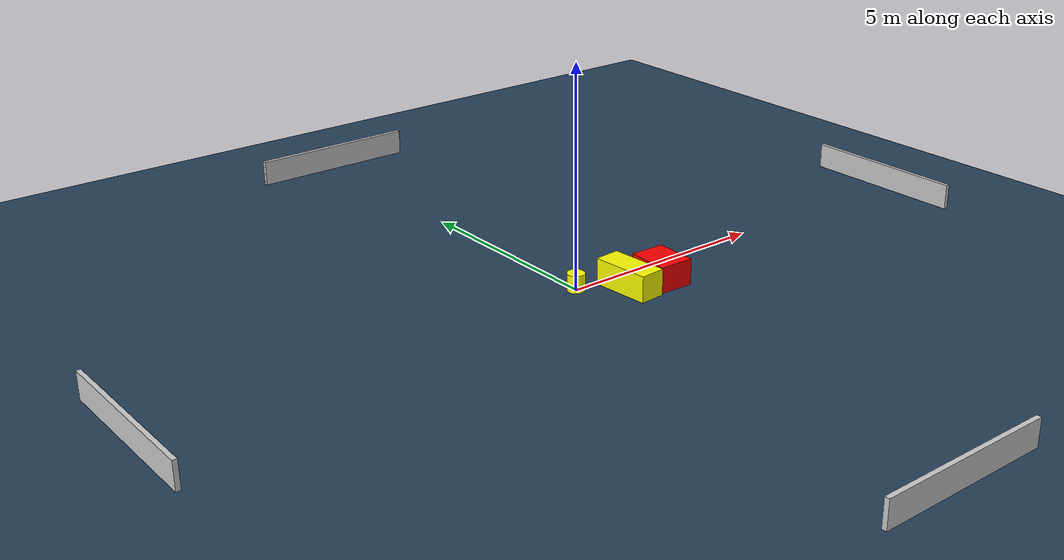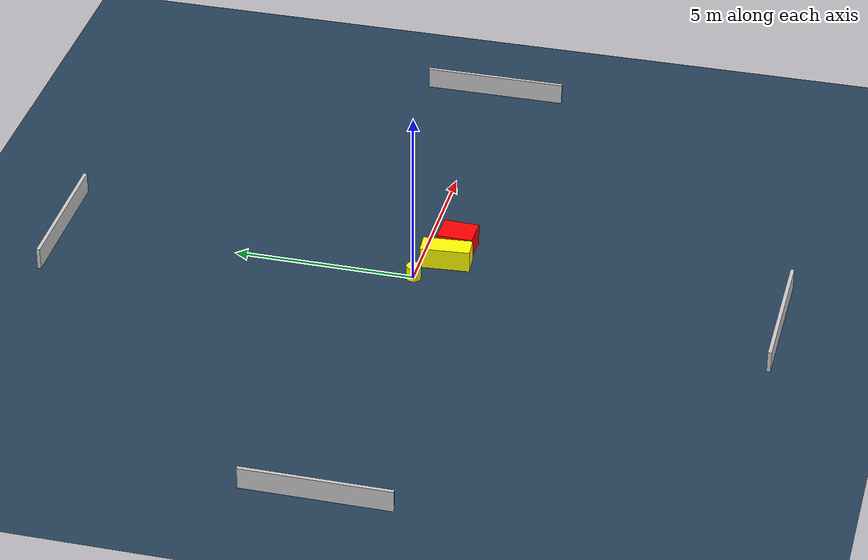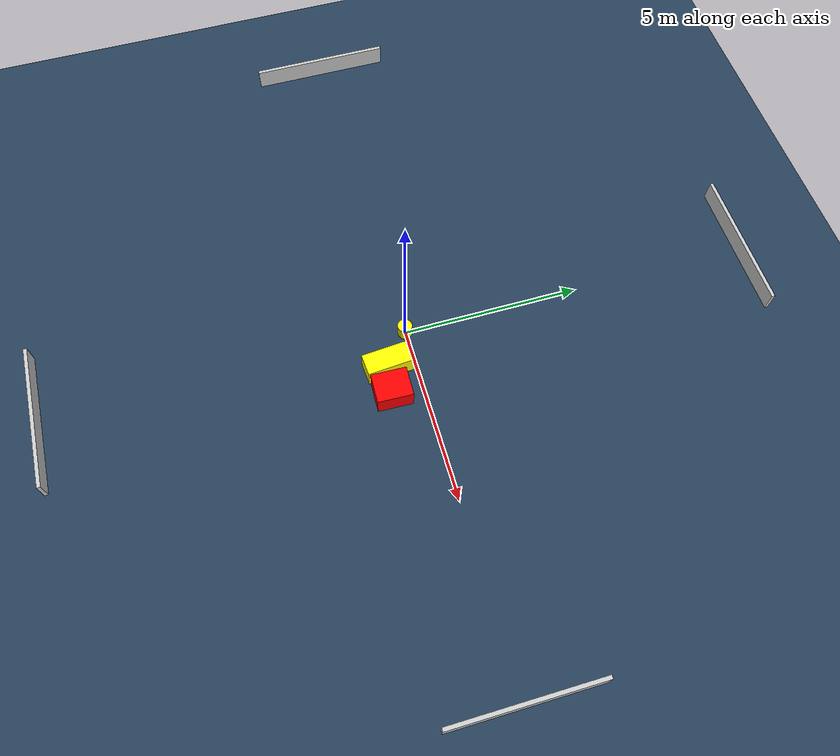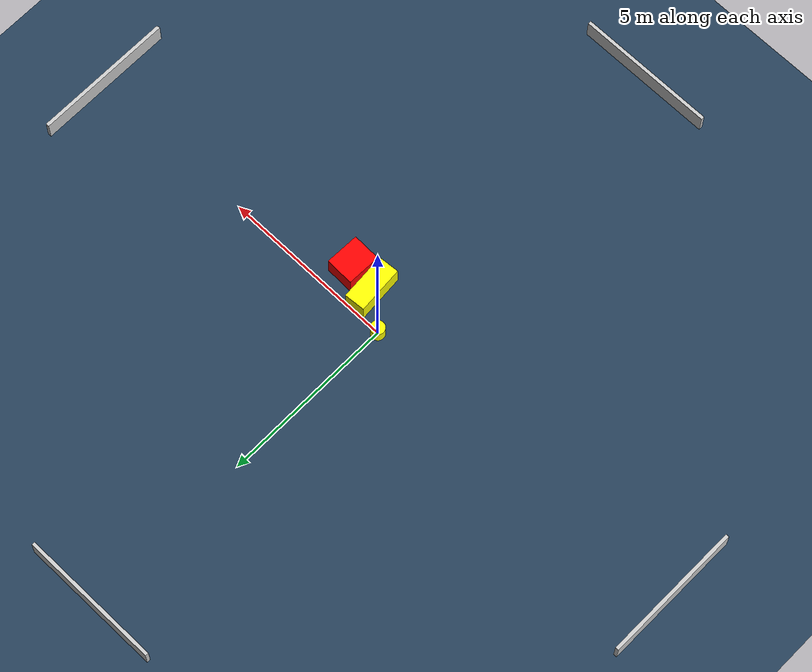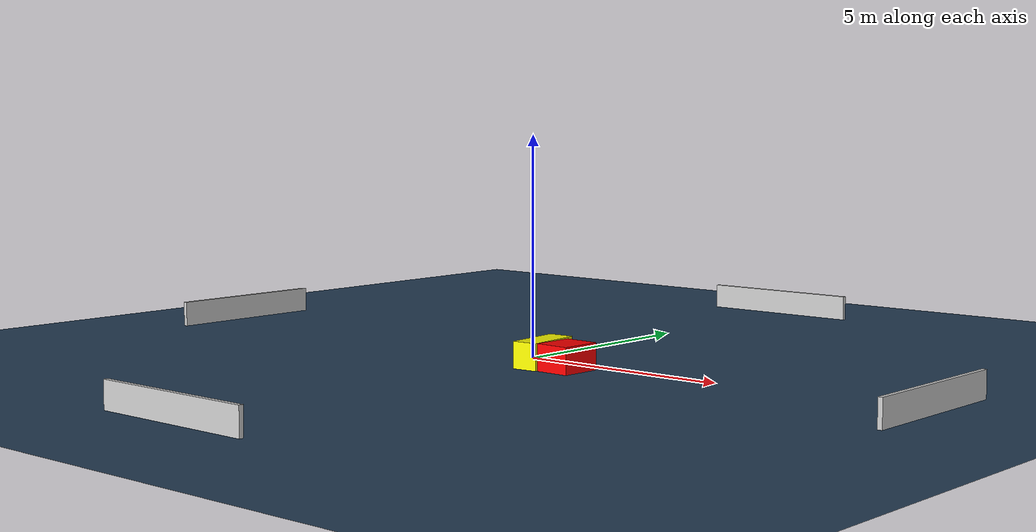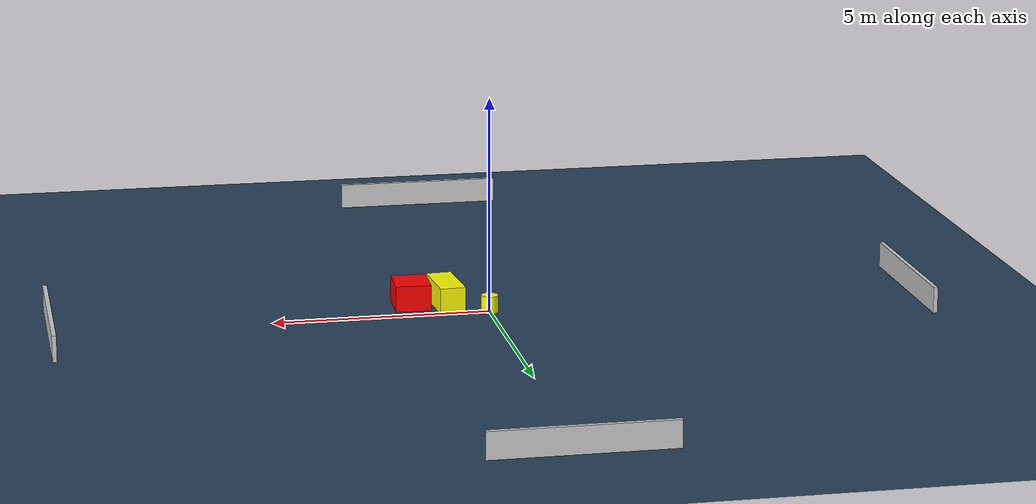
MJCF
<?xml version="1.0" ?>
<mujoco model="generated_environment">
  <option timestep="0.01" integrator="RK4" cone="elliptic"/>
  <default>
    <geom density="1"/>
  </default>
  <asset>
    <texture builtin="gradient" height="3072" name="skybox" rgb1="0.3 0.5 0.7" rgb2="0 0 0" type="skybox" width="512"/>
    <texture builtin="checker" height="300" name="groundplane" rgb1="0.2 0.3 0.4" rgb2="0.1 0.2 0.3" type="2d" width="300"/>
    <material name="groundplane" reflectance="0.2" texrepeat="5 5" texture="groundplane"/>
  </asset>
  <worldbody>
    <light dir="0 0 -1" directional="true" pos="0 0 1.5"/>
    <geom condim="3" friction="0.5 0.005 0.001" material="groundplane" name="floor" pos="0 0 0" size="0 0 0.05" type="plane"/>
    <body name="walls">
      <geom name="wall_1" condim="4" pos="-10.0 0.0 0.3" rgba="0.800000011920929 0.800000011920929 0.800000011920929 1.0" size="0.05 2.0 0.3" type="box"/>
      <geom name="wall_2" condim="4" pos="10.0 0.0 0.3" rgba="0.800000011920929 0.800000011920929 0.800000011920929 1.0" size="0.05 2.0 0.3" type="box"/>
      <geom name="wall_3" condim="4" pos="0.0 -10.0 0.3" rgba="0.800000011920929 0.800000011920929 0.800000011920929 1.0" size="2.0 0.05 0.3" type="box"/>
      <geom name="wall_4" condim="4" pos="0.0 10.0 0.3" rgba="0.800000011920929 0.800000011920929 0.800000011920929 1.0" size="2.0 0.05 0.3" type="box"/>
    </body>
    <body name="robot">
      <joint name="joint_x" type="slide" pos="0 0 0" axis="1 0 0"/>
      <joint name="joint_y" type="slide" pos="0 0 0" axis="0 1 0"/>
      <geom name="robot" type="cylinder" pos="0.0 0.0 0.2" size="0.2 0.2 0.0" mass="5.0" friction="1.0 0.005 0.0001" condim="4" rgba="1.0 1.0 0.0 1.0"/>
    </body>
    <body name="obstacle_1_movable">
      <geom name="obstacle_1_movable" condim="4" pos="0.8998501194146863 -0.6954256784648092 0.3" euler="0 0 184.5069545378454" friction="0.0 0.005 0.001" rgba="1.0 1.0 0.0 1.0" size="0.29788424708583433 0.6807168187937498 0.3" type="box" mass="0.1"/>
      <joint type="free"/>
    </body>
    <body name="obstacle_2_static">
      <geom name="obstacle_2_static" condim="4" pos="1.694806429743603 -0.8332950641558214 0.3" euler="0 0 268.3214689849134" friction="0.0 0.005 0.001" rgba="1.0 0.0 0.0 1.0" size="0.4871206891587607 0.407508351364264 0.3" type="box"/>
    </body>
  </worldbody>
  <actuator>
    <motor name="actuator_x" joint="joint_x" gear="1" ctrlrange="-1 1"/>
    <motor name="actuator_y" joint="joint_y" gear="1" ctrlrange="-1 1"/>
  </actuator>
</mujoco>
